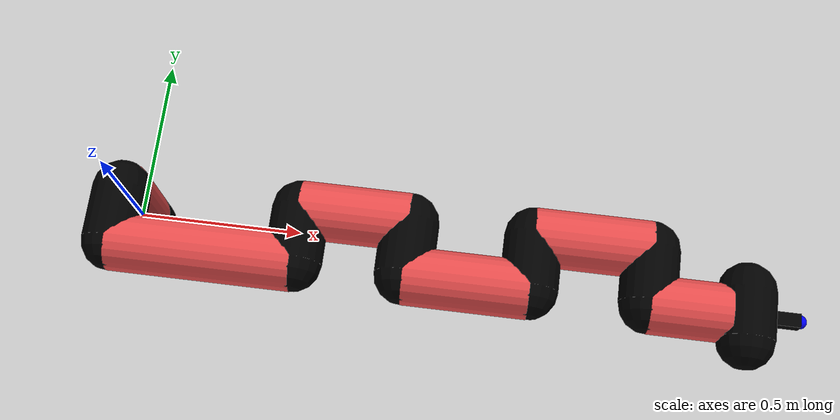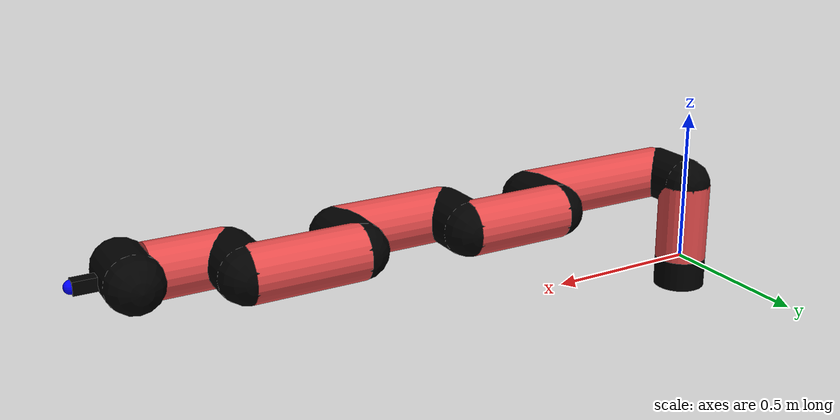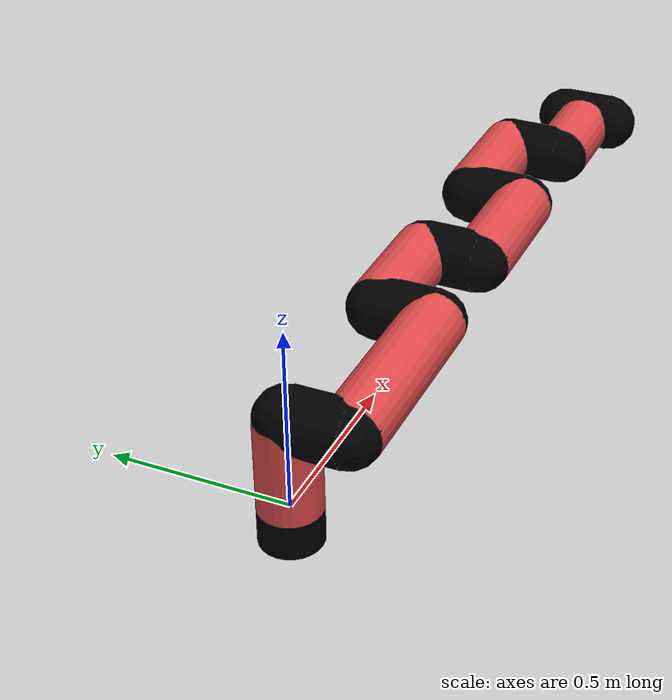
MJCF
<mujoco model="manipulator">
		<compiler angle="degree" coordinate="local" inertiafromgeom="auto" meshdir="meshes/"/>
		<option gravity="0 0 0" integrator="RK4" iterations="30" timestep="0.01"/>

		<default>
		<joint armature="1" limited="true" stiffness="10" damping="15" frictionloss="5.0"/>
		<geom conaffinity="1" condim="3" contype="1" friction=".5 .1 .1" margin="0.002"/>
		<motor ctrllimited="true"/>
		<position ctrllimited="true"/>
		</default>

		<asset>
		<texture builtin="gradient" height="100" rgb1="1.0 1.0 1.0" rgb2="1.0 1.0 1.0" type="skybox" width="100"/>
		<texture builtin="flat" height="32" name="arm_tex" rgb1="0.9 0.3 0.3" type="2d" width="32"/>
		<texture builtin="flat" height="32" name="gripper_tex" rgb1="0.0 0.0 0.0" type="cube" width="32"/>

		<material name="arm_mat" shininess="0.1" specular="0.1" texture="arm_tex"/>
		<material name="gripper_mat" shininess="1" specular="1" texture="gripper_tex"/>
		</asset>

		<worldbody>
		<light cutoff="45" diffuse=".8 .8 .8" dir="0 0.16 -1" directional="false" name="light" pos="0 -2.0 8.0" specular="0.3 0.3 0.3"/>

		<body name="base_link" pos="0 0 -0.1">
		<geom fromto="0 0 0 0 0 0.1" material="arm_mat" name="base_link" rgba="0.0 0.0 0.0 1" size="0.085" type="cylinder"/>
		</body>

		<body name="l1" pos="0 0 0">
<geom fromto="0 0 0 0 0 0.26" material="arm_mat" name="l1" rgba="0.9 0.3 0.3 1" size="0.085" type="cylinder"/>
<geom fromto="0 0 0.26 0 -0.16 0.26" material="arm_mat" name="l1_ex" rgba="0.0 0.0 0.0 1" size="0.085" type="capsule"/>
<joint axis="0 0 1" name="j1" pos="0 0 0" range="-90 90" damping="32.34" frictionloss="8.23"/>

<body name="l2" pos="0 -0.16 0.26">
<geom fromto="0 0 0 0.53 0 0" material="arm_mat" name="l2" rgba="0.9 0.3 0.3 1" size="0.085" type="cylinder"/>
<geom fromto="0.53 0 0 0.53 0.16 0" material="arm_mat" name="l2_ex" rgba="0.0 0.0 0.0 1" size="0.085" type="capsule"/>
<joint axis="0.0 1.0 0.0" name="j2" pos="0 0 0" range="-90 60" damping="36.91" frictionloss="10.67"/>

<body name="l3" pos="0.53 0.16 0">
<geom fromto="0 0 0 0.32 0 0" material="arm_mat" name="l3" rgba="0.9 0.3 0.3 1" size="0.085" type="cylinder"/>
<geom fromto="0.32 0 0 0.32 -0.16 0" material="arm_mat" name="l3_ex" rgba="0.0 0.0 0.0 1" size="0.085" type="capsule"/>
<joint axis="0.0 1.0 0.0" name="j3" pos="0 0 0" range="-30 60" damping="34.17" frictionloss="10.83"/>

<body name="l4" pos="0.32 -0.16 0">
<geom fromto="0 0 0 0.36 0 0" material="arm_mat" name="l4" rgba="0.9 0.3 0.3 1" size="0.085" type="cylinder"/>
<geom fromto="0.36 0 0 0.36 0.16 0" material="arm_mat" name="l4_ex" rgba="0.0 0.0 0.0 1" size="0.085" type="capsule"/>
<joint axis="0.0 1.0 0.0" name="j4" pos="0 0 0" range="-30 60" damping="33.97" frictionloss="7.75"/>

<body name="l5" pos="0.36 0.16 0">
<geom fromto="0 0 0 0.34 0 0" material="arm_mat" name="l5" rgba="0.9 0.3 0.3 1" size="0.085" type="cylinder"/>
<geom fromto="0.34 0 0 0.34 -0.16 0" material="arm_mat" name="l5_ex" rgba="0.0 0.0 0.0 1" size="0.085" type="capsule"/>
<joint axis="0.0 1.0 0.0" name="j5" pos="0 0 0" range="-30 60" damping="36.0" frictionloss="8.44"/>

<body name="l6" pos="0.34 -0.16 0">
<geom fromto="0 0 0 0.23 0 0" material="arm_mat" name="l6" rgba="0.9 0.3 0.3 1" size="0.085" type="cylinder"/>
<joint axis="0.0 1.0 0.0" name="j6" pos="0 0 0" range="-30 60" damping="28.89" frictionloss="8.73"/>

<body name="gripper" pos="0.23 0 0">
<geom fromto="0.05 -0.07 0 0.05 0.07 0" material="gripper_mat" name="gripper" rgba="0.0 0.0 0.0 1" size="0.085" type="capsule"/><joint axis="1 0 0" name="j7" pos="0 0 0" range="-90 90" damping="15" frictionloss="5.0"/><body name="finger" pos="0.1 0 0">
<geom fromto="0 0.0 0 0.1 0.0 0" material="gripper_mat" name="finger" rgba="0.0 0.0 0.0 1" size="0.020 0.06 0.06" type="box"/>
</body>
<site name="current" pos="0.2 0. 0.0" rgba="0. 0. 1.0 1" size="0.02" type="sphere"/>
</body>
</body>
</body>
</body>
</body>
</body>
</body>
</worldbody>
<actuator>
<motor ctrllimited="true" ctrlrange="-1.0 1.0" joint="j1" gear="88.76"/>
<motor ctrllimited="true" ctrlrange="-1.0 1.0" joint="j2" gear="88.37"/>
<motor ctrllimited="true" ctrlrange="-1.0 1.0" joint="j3" gear="98.6"/>
<motor ctrllimited="true" ctrlrange="-1.0 1.0" joint="j4" gear="63.06"/>
<motor ctrllimited="true" ctrlrange="-1.0 1.0" joint="j5" gear="93.56"/>
<motor ctrllimited="true" ctrlrange="-1.0 1.0" joint="j6" gear="96.2"/>
<motor ctrllimited="true" ctrlrange="-1.0 1.0" joint="j7" gear="80"/>
</actuator>
</mujoco>
